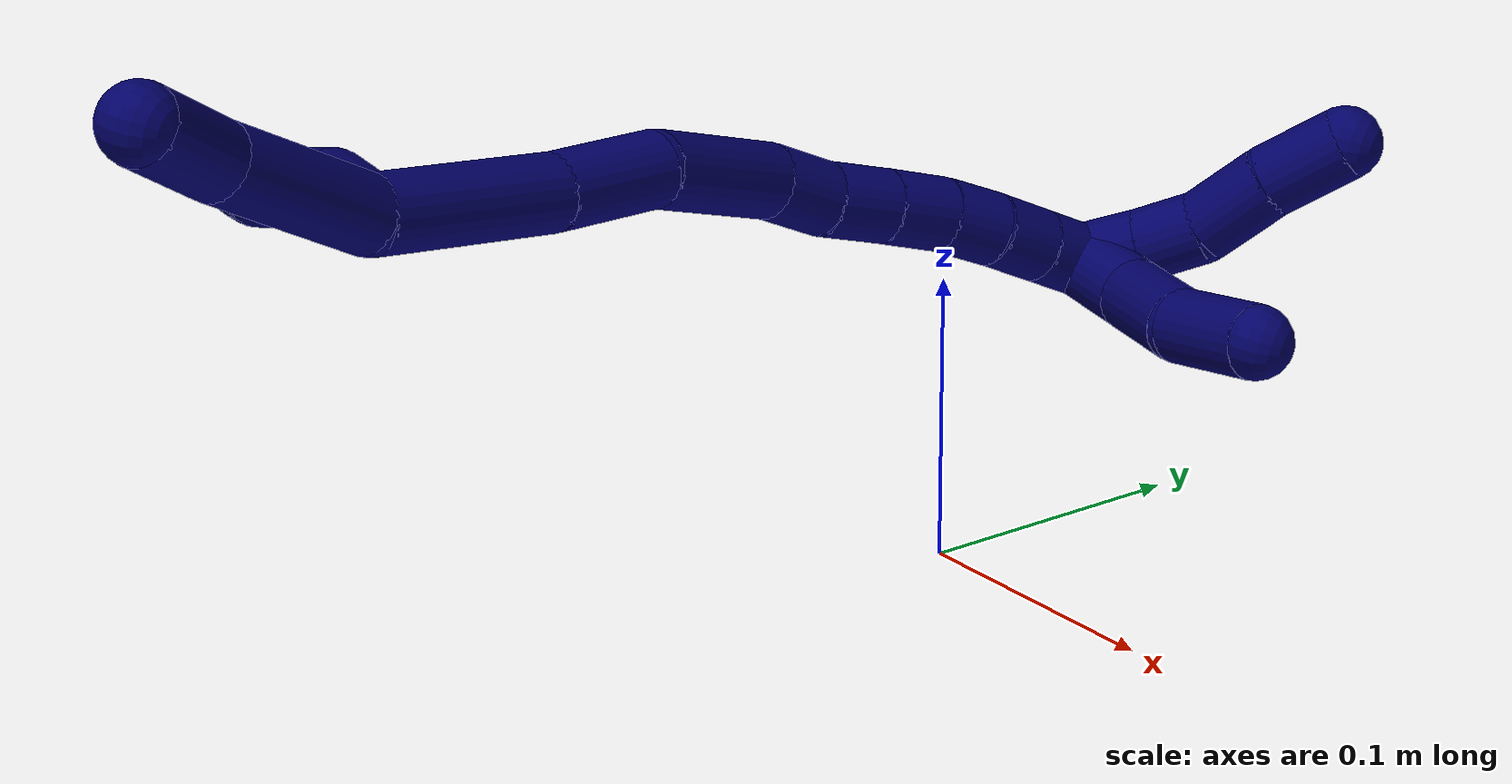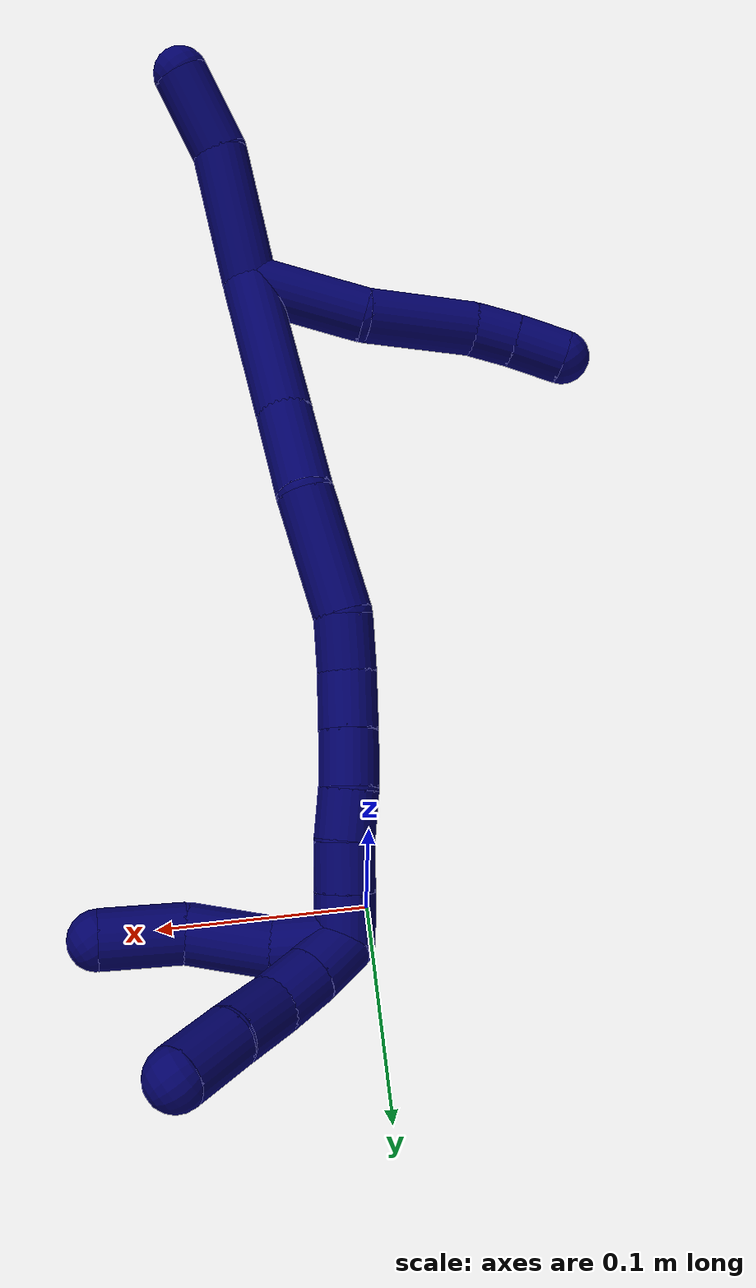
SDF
<sdf version="1.7">
 <world name="default">
  <model name="7">
   <static>0</static>
   <link name="7">
    <collision name="collision-cylinder-e_1_2_8">
     <pose>-0.004799 0.020585 0.016849 -0.884876 -0.178467 0.084725</pose>
     <geometry><cylinder><radius>0.0125</radius><length>0.054062</length></cylinder></geometry>
     <surface>
      <friction><ode><mu>1.16</mu><mu2>1.16</mu2><slip1>0</slip1><slip2>0</slip2></ode></friction>
      <contact><ode><kp>1e+06</kp><kd>1</kd><max_vel>0</max_vel><min_depth>0.001</min_depth></ode></contact>
     </surface>
    </collision>
    <visual name="visual-cylinder-e_1_2_8">
     <pose>-0.004799 0.020585 0.016849 -0.884876 -0.178467 0.084725</pose>
     <geometry><cylinder><radius>0.0125</radius><length>0.054062</length></cylinder></geometry>
     <material><ambient>0.003922 0 0.403922 1</ambient></material>
    </visual>
    <collision name="collision-cylinder-e_2_8_9">
     <pose>-0.018161 0.05511 0.053587 -0.611324 -0.338981 0.107897</pose>
     <geometry><cylinder><radius>0.0125</radius><length>0.051505</length></cylinder></geometry>
     <surface>
      <friction><ode><mu>1.16</mu><mu2>1.16</mu2><slip1>0</slip1><slip2>0</slip2></ode></friction>
      <contact><ode><kp>1e+06</kp><kd>1</kd><max_vel>0</max_vel><min_depth>0.001</min_depth></ode></contact>
     </surface>
    </collision>
    <visual name="visual-cylinder-e_2_8_9">
     <pose>-0.018161 0.05511 0.053587 -0.611324 -0.338981 0.107897</pose>
     <geometry><cylinder><radius>0.0125</radius><length>0.051505</length></cylinder></geometry>
     <material><ambient>0.003922 0 0.403922 1</ambient></material>
    </visual>
    <collision name="collision-cylinder-e_3_9_10">
     <pose>-0.0289 0.076556 0.07999 -0.855892 -0.215584 0.098638</pose>
     <geometry><cylinder><radius>0.0125</radius><length>0.020349</length></cylinder></geometry>
     <surface>
      <friction><ode><mu>1.16</mu><mu2>1.16</mu2><slip1>0</slip1><slip2>0</slip2></ode></friction>
      <contact><ode><kp>1e+06</kp><kd>1</kd><max_vel>0</max_vel><min_depth>0.001</min_depth></ode></contact>
     </surface>
    </collision>
    <visual name="visual-cylinder-e_3_9_10">
     <pose>-0.0289 0.076556 0.07999 -0.855892 -0.215584 0.098638</pose>
     <geometry><cylinder><radius>0.0125</radius><length>0.020349</length></cylinder></geometry>
     <material><ambient>0.003922 0 0.403922 1</ambient></material>
    </visual>
    <collision name="collision-cylinder-e_4_10_6">
     <pose>-0.033444 0.093544 0.093541 -0.932535 -0.197884 0.099834</pose>
     <geometry><cylinder><radius>0.0125</radius><length>0.024084</length></cylinder></geometry>
     <surface>
      <friction><ode><mu>1.16</mu><mu2>1.16</mu2><slip1>0</slip1><slip2>0</slip2></ode></friction>
      <contact><ode><kp>1e+06</kp><kd>1</kd><max_vel>0</max_vel><min_depth>0.001</min_depth></ode></contact>
     </surface>
    </collision>
    <visual name="visual-cylinder-e_4_10_6">
     <pose>-0.033444 0.093544 0.093541 -0.932535 -0.197884 0.099834</pose>
     <geometry><cylinder><radius>0.0125</radius><length>0.024084</length></cylinder></geometry>
     <material><ambient>0.003922 0 0.403922 1</ambient></material>
    </visual>
    <collision name="collision-cylinder-e_1_2_11">
     <pose>0.009784 -0.026543 0.011671 1.15655 0.325444 0.213498</pose>
     <geometry><cylinder><radius>0.0125</radius><length>0.061204</length></cylinder></geometry>
     <surface>
      <friction><ode><mu>1.16</mu><mu2>1.16</mu2><slip1>0</slip1><slip2>0</slip2></ode></friction>
      <contact><ode><kp>1e+06</kp><kd>1</kd><max_vel>0</max_vel><min_depth>0.001</min_depth></ode></contact>
     </surface>
    </collision>
    <visual name="visual-cylinder-e_1_2_11">
     <pose>0.009784 -0.026543 0.011671 1.15655 0.325444 0.213498</pose>
     <geometry><cylinder><radius>0.0125</radius><length>0.061204</length></cylinder></geometry>
     <material><ambient>0.003922 0 0.403922 1</ambient></material>
    </visual>
    <collision name="collision-cylinder-e_2_11_5">
     <pose>0.027202 -0.070712 0.026055 1.41806 0.40443 0.348183</pose>
     <geometry><cylinder><radius>0.0125</radius><length>0.038796</length></cylinder></geometry>
     <surface>
      <friction><ode><mu>1.16</mu><mu2>1.16</mu2><slip1>0</slip1><slip2>0</slip2></ode></friction>
      <contact><ode><kp>1e+06</kp><kd>1</kd><max_vel>0</max_vel><min_depth>0.001</min_depth></ode></contact>
     </surface>
    </collision>
    <visual name="visual-cylinder-e_2_11_5">
     <pose>0.027202 -0.070712 0.026055 1.41806 0.40443 0.348183</pose>
     <geometry><cylinder><radius>0.0125</radius><length>0.038796</length></cylinder></geometry>
     <material><ambient>0.003922 0 0.403922 1</ambient></material>
    </visual>
    <collision name="collision-cylinder-e_1_2_12">
     <pose>0.001293 0.032593 -0.013384 -1.96045 0.036673 -0.054697</pose>
     <geometry><cylinder><radius>0.0125</radius><length>0.070515</length></cylinder></geometry>
     <surface>
      <friction><ode><mu>1.16</mu><mu2>1.16</mu2><slip1>0</slip1><slip2>0</slip2></ode></friction>
      <contact><ode><kp>1e+06</kp><kd>1</kd><max_vel>0</max_vel><min_depth>0.001</min_depth></ode></contact>
     </surface>
    </collision>
    <visual name="visual-cylinder-e_1_2_12">
     <pose>0.001293 0.032593 -0.013384 -1.96045 0.036673 -0.054697</pose>
     <geometry><cylinder><radius>0.0125</radius><length>0.070515</length></cylinder></geometry>
     <material><ambient>0.003922 0 0.403922 1</ambient></material>
    </visual>
    <collision name="collision-cylinder-e_2_12_13">
     <pose>0.005229 0.084148 -0.034668 -1.96551 0.128008 -0.191669</pose>
     <geometry><cylinder><radius>0.0125</radius><length>0.041423</length></cylinder></geometry>
     <surface>
      <friction><ode><mu>1.16</mu><mu2>1.16</mu2><slip1>0</slip1><slip2>0</slip2></ode></friction>
      <contact><ode><kp>1e+06</kp><kd>1</kd><max_vel>0</max_vel><min_depth>0.001</min_depth></ode></contact>
     </surface>
    </collision>
    <visual name="visual-cylinder-e_2_12_13">
     <pose>0.005229 0.084148 -0.034668 -1.96551 0.128008 -0.191669</pose>
     <geometry><cylinder><radius>0.0125</radius><length>0.041423</length></cylinder></geometry>
     <material><ambient>0.003922 0 0.403922 1</ambient></material>
    </visual>
    <collision name="collision-cylinder-e_3_13_14">
     <pose>0.003838 0.128614 -0.05167 -1.91363 -0.147922 0.209474</pose>
     <geometry><cylinder><radius>0.0125</radius><length>0.054756</length></cylinder></geometry>
     <surface>
      <friction><ode><mu>1.16</mu><mu2>1.16</mu2><slip1>0</slip1><slip2>0</slip2></ode></friction>
      <contact><ode><kp>1e+06</kp><kd>1</kd><max_vel>0</max_vel><min_depth>0.001</min_depth></ode></contact>
     </surface>
    </collision>
    <visual name="visual-cylinder-e_3_13_14">
     <pose>0.003838 0.128614 -0.05167 -1.91363 -0.147922 0.209474</pose>
     <geometry><cylinder><radius>0.0125</radius><length>0.054756</length></cylinder></geometry>
     <material><ambient>0.003922 0 0.403922 1</ambient></material>
    </visual>
    <collision name="collision-cylinder-e_4_14_15">
     <pose>-0.003194 0.163877 -0.067201 -2.15324 -0.251049 0.460139</pose>
     <geometry><cylinder><radius>0.0125</radius><length>0.02413</length></cylinder></geometry>
     <surface>
      <friction><ode><mu>1.16</mu><mu2>1.16</mu2><slip1>0</slip1><slip2>0</slip2></ode></friction>
      <contact><ode><kp>1e+06</kp><kd>1</kd><max_vel>0</max_vel><min_depth>0.001</min_depth></ode></contact>
     </surface>
    </collision>
    <visual name="visual-cylinder-e_4_14_15">
     <pose>-0.003194 0.163877 -0.067201 -2.15324 -0.251049 0.460139</pose>
     <geometry><cylinder><radius>0.0125</radius><length>0.02413</length></cylinder></geometry>
     <material><ambient>0.003922 0 0.403922 1</ambient></material>
    </visual>
    <collision name="collision-cylinder-e_5_15_16">
     <pose>-0.007271 0.183586 -0.080603 -2.18219 -0.088668 0.170139</pose>
     <geometry><cylinder><radius>0.0125</radius><length>0.024395</length></cylinder></geometry>
     <surface>
      <friction><ode><mu>1.16</mu><mu2>1.16</mu2><slip1>0</slip1><slip2>0</slip2></ode></friction>
      <contact><ode><kp>1e+06</kp><kd>1</kd><max_vel>0</max_vel><min_depth>0.001</min_depth></ode></contact>
     </surface>
    </collision>
    <visual name="visual-cylinder-e_5_15_16">
     <pose>-0.007271 0.183586 -0.080603 -2.18219 -0.088668 0.170139</pose>
     <geometry><cylinder><radius>0.0125</radius><length>0.024395</length></cylinder></geometry>
     <material><ambient>0.003922 0 0.403922 1</ambient></material>
    </visual>
    <collision name="collision-cylinder-e_6_16_17">
     <pose>-0.009544 0.202931 -0.094525 -2.20749 -0.101689 0.201151</pose>
     <geometry><cylinder><radius>0.0125</radius><length>0.023493</length></cylinder></geometry>
     <surface>
      <friction><ode><mu>1.16</mu><mu2>1.16</mu2><slip1>0</slip1><slip2>0</slip2></ode></friction>
      <contact><ode><kp>1e+06</kp><kd>1</kd><max_vel>0</max_vel><min_depth>0.001</min_depth></ode></contact>
     </surface>
    </collision>
    <visual name="visual-cylinder-e_6_16_17">
     <pose>-0.009544 0.202931 -0.094525 -2.20749 -0.101689 0.201151</pose>
     <geometry><cylinder><radius>0.0125</radius><length>0.023493</length></cylinder></geometry>
     <material><ambient>0.003922 0 0.403922 1</ambient></material>
    </visual>
    <collision name="collision-cylinder-e_7_17_18">
     <pose>-0.012758 0.219836 -0.108256 -2.30542 -0.197187 0.438135</pose>
     <geometry><cylinder><radius>0.0125</radius><length>0.020638</length></cylinder></geometry>
     <surface>
      <friction><ode><mu>1.16</mu><mu2>1.16</mu2><slip1>0</slip1><slip2>0</slip2></ode></friction>
      <contact><ode><kp>1e+06</kp><kd>1</kd><max_vel>0</max_vel><min_depth>0.001</min_depth></ode></contact>
     </surface>
    </collision>
    <visual name="visual-cylinder-e_7_17_18">
     <pose>-0.012758 0.219836 -0.108256 -2.30542 -0.197187 0.438135</pose>
     <geometry><cylinder><radius>0.0125</radius><length>0.020638</length></cylinder></geometry>
     <material><ambient>0.003922 0 0.403922 1</ambient></material>
    </visual>
    <collision name="collision-cylinder-e_8_18_19">
     <pose>-0.017402 0.235335 -0.120999 -2.21172 -0.257286 0.504768</pose>
     <geometry><cylinder><radius>0.0125</radius><length>0.020614</length></cylinder></geometry>
     <surface>
      <friction><ode><mu>1.16</mu><mu2>1.16</mu2><slip1>0</slip1><slip2>0</slip2></ode></friction>
      <contact><ode><kp>1e+06</kp><kd>1</kd><max_vel>0</max_vel><min_depth>0.001</min_depth></ode></contact>
     </surface>
    </collision>
    <visual name="visual-cylinder-e_8_18_19">
     <pose>-0.017402 0.235335 -0.120999 -2.21172 -0.257286 0.504768</pose>
     <geometry><cylinder><radius>0.0125</radius><length>0.020614</length></cylinder></geometry>
     <material><ambient>0.003922 0 0.403922 1</ambient></material>
    </visual>
    <collision name="collision-cylinder-e_9_19_1">
     <pose>-0.022572 0.250991 -0.132882 -2.22864 -0.257125 0.514828</pose>
     <geometry><cylinder><radius>0.0125</radius><length>0.020035</length></cylinder></geometry>
     <surface>
      <friction><ode><mu>1.16</mu><mu2>1.16</mu2><slip1>0</slip1><slip2>0</slip2></ode></friction>
      <contact><ode><kp>1e+06</kp><kd>1</kd><max_vel>0</max_vel><min_depth>0.001</min_depth></ode></contact>
     </surface>
    </collision>
    <visual name="visual-cylinder-e_9_19_1">
     <pose>-0.022572 0.250991 -0.132882 -2.22864 -0.257125 0.514828</pose>
     <geometry><cylinder><radius>0.0125</radius><length>0.020035</length></cylinder></geometry>
     <material><ambient>0.003922 0 0.403922 1</ambient></material>
    </visual>
    <collision name="collision-cylinder-e_1_1_20">
     <pose>-0.025741 0.250724 -0.150991 2.56447 -0.04271 -0.143653</pose>
     <geometry><cylinder><radius>0.0125</radius><length>0.029107</length></cylinder></geometry>
     <surface>
      <friction><ode><mu>1.16</mu><mu2>1.16</mu2><slip1>0</slip1><slip2>0</slip2></ode></friction>
      <contact><ode><kp>1e+06</kp><kd>1</kd><max_vel>0</max_vel><min_depth>0.001</min_depth></ode></contact>
     </surface>
    </collision>
    <visual name="visual-cylinder-e_1_1_20">
     <pose>-0.025741 0.250724 -0.150991 2.56447 -0.04271 -0.143653</pose>
     <geometry><cylinder><radius>0.0125</radius><length>0.029107</length></cylinder></geometry>
     <material><ambient>0.003922 0 0.403922 1</ambient></material>
    </visual>
    <collision name="collision-cylinder-e_2_20_21">
     <pose>-0.02519 0.230172 -0.175606 2.34865 0.066111 0.15765</pose>
     <geometry><cylinder><radius>0.0125</radius><length>0.035503</length></cylinder></geometry>
     <surface>
      <friction><ode><mu>1.16</mu><mu2>1.16</mu2><slip1>0</slip1><slip2>0</slip2></ode></friction>
      <contact><ode><kp>1e+06</kp><kd>1</kd><max_vel>0</max_vel><min_depth>0.001</min_depth></ode></contact>
     </surface>
    </collision>
    <visual name="visual-cylinder-e_2_20_21">
     <pose>-0.02519 0.230172 -0.175606 2.34865 0.066111 0.15765</pose>
     <geometry><cylinder><radius>0.0125</radius><length>0.035503</length></cylinder></geometry>
     <material><ambient>0.003922 0 0.403922 1</ambient></material>
    </visual>
    <collision name="collision-cylinder-e_3_21_4">
     <pose>-0.020203 0.208687 -0.202867 2.60277 0.217213 0.752168</pose>
     <geometry><cylinder><radius>0.0125</radius><length>0.03539</length></cylinder></geometry>
     <surface>
      <friction><ode><mu>1.16</mu><mu2>1.16</mu2><slip1>0</slip1><slip2>0</slip2></ode></friction>
      <contact><ode><kp>1e+06</kp><kd>1</kd><max_vel>0</max_vel><min_depth>0.001</min_depth></ode></contact>
     </surface>
    </collision>
    <visual name="visual-cylinder-e_3_21_4">
     <pose>-0.020203 0.208687 -0.202867 2.60277 0.217213 0.752168</pose>
     <geometry><cylinder><radius>0.0125</radius><length>0.03539</length></cylinder></geometry>
     <material><ambient>0.003922 0 0.403922 1</ambient></material>
    </visual>
    <collision name="collision-cylinder-e_1_1_22">
     <pose>-0.019878 0.260428 -0.148105 -2.95349 0.505731 -2.44153</pose>
     <geometry><cylinder><radius>0.0125</radius><length>0.021641</length></cylinder></geometry>
     <surface>
      <friction><ode><mu>1.16</mu><mu2>1.16</mu2><slip1>0</slip1><slip2>0</slip2></ode></friction>
      <contact><ode><kp>1e+06</kp><kd>1</kd><max_vel>0</max_vel><min_depth>0.001</min_depth></ode></contact>
     </surface>
    </collision>
    <visual name="visual-cylinder-e_1_1_22">
     <pose>-0.019878 0.260428 -0.148105 -2.95349 0.505731 -2.44153</pose>
     <geometry><cylinder><radius>0.0125</radius><length>0.021641</length></cylinder></geometry>
     <material><ambient>0.003922 0 0.403922 1</ambient></material>
    </visual>
    <collision name="collision-cylinder-e_2_22_23">
     <pose>-0.008839 0.26326 -0.166407 -3.02409 0.568926 -2.74458</pose>
     <geometry><cylinder><radius>0.0125</radius><length>0.021519</length></cylinder></geometry>
     <surface>
      <friction><ode><mu>1.16</mu><mu2>1.16</mu2><slip1>0</slip1><slip2>0</slip2></ode></friction>
      <contact><ode><kp>1e+06</kp><kd>1</kd><max_vel>0</max_vel><min_depth>0.001</min_depth></ode></contact>
     </surface>
    </collision>
    <visual name="visual-cylinder-e_2_22_23">
     <pose>-0.008839 0.26326 -0.166407 -3.02409 0.568926 -2.74458</pose>
     <geometry><cylinder><radius>0.0125</radius><length>0.021519</length></cylinder></geometry>
     <material><ambient>0.003922 0 0.403922 1</ambient></material>
    </visual>
    <collision name="collision-cylinder-e_3_23_24">
     <pose>0.007549 0.265403 -0.184456 -3.0228 0.860388 -2.88384</pose>
     <geometry><cylinder><radius>0.0125</radius><length>0.027943</length></cylinder></geometry>
     <surface>
      <friction><ode><mu>1.16</mu><mu2>1.16</mu2><slip1>0</slip1><slip2>0</slip2></ode></friction>
      <contact><ode><kp>1e+06</kp><kd>1</kd><max_vel>0</max_vel><min_depth>0.001</min_depth></ode></contact>
     </surface>
    </collision>
    <visual name="visual-cylinder-e_3_23_24">
     <pose>0.007549 0.265403 -0.184456 -3.0228 0.860388 -2.88384</pose>
     <geometry><cylinder><radius>0.0125</radius><length>0.027943</length></cylinder></geometry>
     <material><ambient>0.003922 0 0.403922 1</ambient></material>
    </visual>
    <collision name="collision-cylinder-e_4_24_3">
     <pose>0.027833 0.267749 -0.204143 -3.02312 0.735312 -2.83604</pose>
     <geometry><cylinder><radius>0.0125</radius><length>0.028896</length></cylinder></geometry>
     <surface>
      <friction><ode><mu>1.16</mu><mu2>1.16</mu2><slip1>0</slip1><slip2>0</slip2></ode></friction>
      <contact><ode><kp>1e+06</kp><kd>1</kd><max_vel>0</max_vel><min_depth>0.001</min_depth></ode></contact>
     </surface>
    </collision>
    <visual name="visual-cylinder-e_4_24_3">
     <pose>0.027833 0.267749 -0.204143 -3.02312 0.735312 -2.83604</pose>
     <geometry><cylinder><radius>0.0125</radius><length>0.028896</length></cylinder></geometry>
     <material><ambient>0.003922 0 0.403922 1</ambient></material>
    </visual>
    <collision name="collision-sphere-3">
     <pose>0.037525 0.269016 -0.214783 0 -0 0</pose>
     <geometry><sphere><radius>0.0125</radius></sphere></geometry>
     <surface>
      <friction><ode><mu>1.16</mu><mu2>1.16</mu2><slip1>0</slip1><slip2>0</slip2></ode></friction>
      <contact><ode><kp>1e+06</kp><kd>1</kd><max_vel>0</max_vel><min_depth>0.001</min_depth></ode></contact>
     </surface>
    </collision>
    <visual name="visual-sphere-3">
     <pose>0.037525 0.269016 -0.214783 0 -0 0</pose>
     <geometry><sphere><radius>0.0125</radius></sphere></geometry>
     <material><ambient>0.003922 0 0.403922 1</ambient></material>
    </visual>
    <collision name="collision-sphere-24">
     <pose>0.018141 0.266483 -0.193503 0 -0 0</pose>
     <geometry><sphere><radius>0.0125</radius></sphere></geometry>
     <surface>
      <friction><ode><mu>1.16</mu><mu2>1.16</mu2><slip1>0</slip1><slip2>0</slip2></ode></friction>
      <contact><ode><kp>1e+06</kp><kd>1</kd><max_vel>0</max_vel><min_depth>0.001</min_depth></ode></contact>
     </surface>
    </collision>
    <visual name="visual-sphere-24">
     <pose>0.018141 0.266483 -0.193503 0 -0 0</pose>
     <geometry><sphere><radius>0.0125</radius></sphere></geometry>
     <material><ambient>0.003922 0 0.403922 1</ambient></material>
    </visual>
    <collision name="collision-sphere-23">
     <pose>-0.003042 0.264323 -0.175409 0 -0 0</pose>
     <geometry><sphere><radius>0.0125</radius></sphere></geometry>
     <surface>
      <friction><ode><mu>1.16</mu><mu2>1.16</mu2><slip1>0</slip1><slip2>0</slip2></ode></friction>
      <contact><ode><kp>1e+06</kp><kd>1</kd><max_vel>0</max_vel><min_depth>0.001</min_depth></ode></contact>
     </surface>
    </collision>
    <visual name="visual-sphere-23">
     <pose>-0.003042 0.264323 -0.175409 0 -0 0</pose>
     <geometry><sphere><radius>0.0125</radius></sphere></geometry>
     <material><ambient>0.003922 0 0.403922 1</ambient></material>
    </visual>
    <collision name="collision-sphere-22">
     <pose>-0.014635 0.262198 -0.157404 0 -0 0</pose>
     <geometry><sphere><radius>0.0125</radius></sphere></geometry>
     <surface>
      <friction><ode><mu>1.16</mu><mu2>1.16</mu2><slip1>0</slip1><slip2>0</slip2></ode></friction>
      <contact><ode><kp>1e+06</kp><kd>1</kd><max_vel>0</max_vel><min_depth>0.001</min_depth></ode></contact>
     </surface>
    </collision>
    <visual name="visual-sphere-22">
     <pose>-0.014635 0.262198 -0.157404 0 -0 0</pose>
     <geometry><sphere><radius>0.0125</radius></sphere></geometry>
     <material><ambient>0.003922 0 0.403922 1</ambient></material>
    </visual>
    <collision name="collision-sphere-4">
     <pose>-0.01639 0.19982 -0.217698 0 -0 0</pose>
     <geometry><sphere><radius>0.0125</radius></sphere></geometry>
     <surface>
      <friction><ode><mu>1.16</mu><mu2>1.16</mu2><slip1>0</slip1><slip2>0</slip2></ode></friction>
      <contact><ode><kp>1e+06</kp><kd>1</kd><max_vel>0</max_vel><min_depth>0.001</min_depth></ode></contact>
     </surface>
    </collision>
    <visual name="visual-sphere-4">
     <pose>-0.01639 0.19982 -0.217698 0 -0 0</pose>
     <geometry><sphere><radius>0.0125</radius></sphere></geometry>
     <material><ambient>0.003922 0 0.403922 1</ambient></material>
    </visual>
    <collision name="collision-sphere-21">
     <pose>-0.024017 0.217553 -0.188036 0 -0 0</pose>
     <geometry><sphere><radius>0.0125</radius></sphere></geometry>
     <surface>
      <friction><ode><mu>1.16</mu><mu2>1.16</mu2><slip1>0</slip1><slip2>0</slip2></ode></friction>
      <contact><ode><kp>1e+06</kp><kd>1</kd><max_vel>0</max_vel><min_depth>0.001</min_depth></ode></contact>
     </surface>
    </collision>
    <visual name="visual-sphere-21">
     <pose>-0.024017 0.217553 -0.188036 0 -0 0</pose>
     <geometry><sphere><radius>0.0125</radius></sphere></geometry>
     <material><ambient>0.003922 0 0.403922 1</ambient></material>
    </visual>
    <collision name="collision-sphere-20">
     <pose>-0.026362 0.242791 -0.163176 0 -0 0</pose>
     <geometry><sphere><radius>0.0125</radius></sphere></geometry>
     <surface>
      <friction><ode><mu>1.16</mu><mu2>1.16</mu2><slip1>0</slip1><slip2>0</slip2></ode></friction>
      <contact><ode><kp>1e+06</kp><kd>1</kd><max_vel>0</max_vel><min_depth>0.001</min_depth></ode></contact>
     </surface>
    </collision>
    <visual name="visual-sphere-20">
     <pose>-0.026362 0.242791 -0.163176 0 -0 0</pose>
     <geometry><sphere><radius>0.0125</radius></sphere></geometry>
     <material><ambient>0.003922 0 0.403922 1</ambient></material>
    </visual>
    <collision name="collision-sphere-11">
     <pose>0.019569 -0.053087 0.023342 0 -0 0</pose>
     <geometry><sphere><radius>0.0125</radius></sphere></geometry>
     <surface>
      <friction><ode><mu>1.16</mu><mu2>1.16</mu2><slip1>0</slip1><slip2>0</slip2></ode></friction>
      <contact><ode><kp>1e+06</kp><kd>1</kd><max_vel>0</max_vel><min_depth>0.001</min_depth></ode></contact>
     </surface>
    </collision>
    <visual name="visual-sphere-11">
     <pose>0.019569 -0.053087 0.023342 0 -0 0</pose>
     <geometry><sphere><radius>0.0125</radius></sphere></geometry>
     <material><ambient>0.003922 0 0.403922 1</ambient></material>
    </visual>
    <collision name="collision-sphere-6">
     <pose>-0.035812 0.103026 0.100575 0 -0 0</pose>
     <geometry><sphere><radius>0.0125</radius></sphere></geometry>
     <surface>
      <friction><ode><mu>1.16</mu><mu2>1.16</mu2><slip1>0</slip1><slip2>0</slip2></ode></friction>
      <contact><ode><kp>1e+06</kp><kd>1</kd><max_vel>0</max_vel><min_depth>0.001</min_depth></ode></contact>
     </surface>
    </collision>
    <visual name="visual-sphere-6">
     <pose>-0.035812 0.103026 0.100575 0 -0 0</pose>
     <geometry><sphere><radius>0.0125</radius></sphere></geometry>
     <material><ambient>0.003922 0 0.403922 1</ambient></material>
    </visual>
    <collision name="collision-sphere-10">
     <pose>-0.031077 0.084061 0.086506 0 -0 0</pose>
     <geometry><sphere><radius>0.0125</radius></sphere></geometry>
     <surface>
      <friction><ode><mu>1.16</mu><mu2>1.16</mu2><slip1>0</slip1><slip2>0</slip2></ode></friction>
      <contact><ode><kp>1e+06</kp><kd>1</kd><max_vel>0</max_vel><min_depth>0.001</min_depth></ode></contact>
     </surface>
    </collision>
    <visual name="visual-sphere-10">
     <pose>-0.031077 0.084061 0.086506 0 -0 0</pose>
     <geometry><sphere><radius>0.0125</radius></sphere></geometry>
     <material><ambient>0.003922 0 0.403922 1</ambient></material>
    </visual>
    <collision name="collision-sphere-9">
     <pose>-0.026724 0.06905 0.073475 0 -0 0</pose>
     <geometry><sphere><radius>0.0125</radius></sphere></geometry>
     <surface>
      <friction><ode><mu>1.16</mu><mu2>1.16</mu2><slip1>0</slip1><slip2>0</slip2></ode></friction>
      <contact><ode><kp>1e+06</kp><kd>1</kd><max_vel>0</max_vel><min_depth>0.001</min_depth></ode></contact>
     </surface>
    </collision>
    <visual name="visual-sphere-9">
     <pose>-0.026724 0.06905 0.073475 0 -0 0</pose>
     <geometry><sphere><radius>0.0125</radius></sphere></geometry>
     <material><ambient>0.003922 0 0.403922 1</ambient></material>
    </visual>
    <collision name="collision-sphere-2">
     <geometry><sphere><radius>0.0125</radius></sphere></geometry>
     <surface>
      <friction><ode><mu>1.16</mu><mu2>1.16</mu2><slip1>0</slip1><slip2>0</slip2></ode></friction>
      <contact><ode><kp>1e+06</kp><kd>1</kd><max_vel>0</max_vel><min_depth>0.001</min_depth></ode></contact>
     </surface>
    </collision>
    <visual name="visual-sphere-2">
     <geometry><sphere><radius>0.0125</radius></sphere></geometry>
     <material><ambient>0.003922 0 0.403922 1</ambient></material>
    </visual>
    <collision name="collision-sphere-19">
     <pose>-0.020025 0.243325 -0.126959 0 -0 0</pose>
     <geometry><sphere><radius>0.0125</radius></sphere></geometry>
     <surface>
      <friction><ode><mu>1.16</mu><mu2>1.16</mu2><slip1>0</slip1><slip2>0</slip2></ode></friction>
      <contact><ode><kp>1e+06</kp><kd>1</kd><max_vel>0</max_vel><min_depth>0.001</min_depth></ode></contact>
     </surface>
    </collision>
    <visual name="visual-sphere-19">
     <pose>-0.020025 0.243325 -0.126959 0 -0 0</pose>
     <geometry><sphere><radius>0.0125</radius></sphere></geometry>
     <material><ambient>0.003922 0 0.403922 1</ambient></material>
    </visual>
    <collision name="collision-sphere-8">
     <pose>-0.009597 0.041171 0.033698 0 -0 0</pose>
     <geometry><sphere><radius>0.0125</radius></sphere></geometry>
     <surface>
      <friction><ode><mu>1.16</mu><mu2>1.16</mu2><slip1>0</slip1><slip2>0</slip2></ode></friction>
      <contact><ode><kp>1e+06</kp><kd>1</kd><max_vel>0</max_vel><min_depth>0.001</min_depth></ode></contact>
     </surface>
    </collision>
    <visual name="visual-sphere-8">
     <pose>-0.009597 0.041171 0.033698 0 -0 0</pose>
     <geometry><sphere><radius>0.0125</radius></sphere></geometry>
     <material><ambient>0.003922 0 0.403922 1</ambient></material>
    </visual>
    <collision name="collision-sphere-5">
     <pose>0.034835 -0.088337 0.028768 0 -0 0</pose>
     <geometry><sphere><radius>0.0125</radius></sphere></geometry>
     <surface>
      <friction><ode><mu>1.16</mu><mu2>1.16</mu2><slip1>0</slip1><slip2>0</slip2></ode></friction>
      <contact><ode><kp>1e+06</kp><kd>1</kd><max_vel>0</max_vel><min_depth>0.001</min_depth></ode></contact>
     </surface>
    </collision>
    <visual name="visual-sphere-5">
     <pose>0.034835 -0.088337 0.028768 0 -0 0</pose>
     <geometry><sphere><radius>0.0125</radius></sphere></geometry>
     <material><ambient>0.003922 0 0.403922 1</ambient></material>
    </visual>
    <collision name="collision-sphere-12">
     <pose>0.002585 0.065186 -0.026768 0 -0 0</pose>
     <geometry><sphere><radius>0.0125</radius></sphere></geometry>
     <surface>
      <friction><ode><mu>1.16</mu><mu2>1.16</mu2><slip1>0</slip1><slip2>0</slip2></ode></friction>
      <contact><ode><kp>1e+06</kp><kd>1</kd><max_vel>0</max_vel><min_depth>0.001</min_depth></ode></contact>
     </surface>
    </collision>
    <visual name="visual-sphere-12">
     <pose>0.002585 0.065186 -0.026768 0 -0 0</pose>
     <geometry><sphere><radius>0.0125</radius></sphere></geometry>
     <material><ambient>0.003922 0 0.403922 1</ambient></material>
    </visual>
    <collision name="collision-sphere-13">
     <pose>0.007873 0.103111 -0.042567 0 -0 0</pose>
     <geometry><sphere><radius>0.0125</radius></sphere></geometry>
     <surface>
      <friction><ode><mu>1.16</mu><mu2>1.16</mu2><slip1>0</slip1><slip2>0</slip2></ode></friction>
      <contact><ode><kp>1e+06</kp><kd>1</kd><max_vel>0</max_vel><min_depth>0.001</min_depth></ode></contact>
     </surface>
    </collision>
    <visual name="visual-sphere-13">
     <pose>0.007873 0.103111 -0.042567 0 -0 0</pose>
     <geometry><sphere><radius>0.0125</radius></sphere></geometry>
     <material><ambient>0.003922 0 0.403922 1</ambient></material>
    </visual>
    <collision name="collision-sphere-14">
     <pose>-0.000197 0.154117 -0.060772 0 -0 0</pose>
     <geometry><sphere><radius>0.0125</radius></sphere></geometry>
     <surface>
      <friction><ode><mu>1.16</mu><mu2>1.16</mu2><slip1>0</slip1><slip2>0</slip2></ode></friction>
      <contact><ode><kp>1e+06</kp><kd>1</kd><max_vel>0</max_vel><min_depth>0.001</min_depth></ode></contact>
     </surface>
    </collision>
    <visual name="visual-sphere-14">
     <pose>-0.000197 0.154117 -0.060772 0 -0 0</pose>
     <geometry><sphere><radius>0.0125</radius></sphere></geometry>
     <material><ambient>0.003922 0 0.403922 1</ambient></material>
    </visual>
    <collision name="collision-sphere-15">
     <pose>-0.006191 0.173637 -0.073629 0 -0 0</pose>
     <geometry><sphere><radius>0.0125</radius></sphere></geometry>
     <surface>
      <friction><ode><mu>1.16</mu><mu2>1.16</mu2><slip1>0</slip1><slip2>0</slip2></ode></friction>
      <contact><ode><kp>1e+06</kp><kd>1</kd><max_vel>0</max_vel><min_depth>0.001</min_depth></ode></contact>
     </surface>
    </collision>
    <visual name="visual-sphere-15">
     <pose>-0.006191 0.173637 -0.073629 0 -0 0</pose>
     <geometry><sphere><radius>0.0125</radius></sphere></geometry>
     <material><ambient>0.003922 0 0.403922 1</ambient></material>
    </visual>
    <collision name="collision-sphere-16">
     <pose>-0.008351 0.193534 -0.087577 0 -0 0</pose>
     <geometry><sphere><radius>0.0125</radius></sphere></geometry>
     <surface>
      <friction><ode><mu>1.16</mu><mu2>1.16</mu2><slip1>0</slip1><slip2>0</slip2></ode></friction>
      <contact><ode><kp>1e+06</kp><kd>1</kd><max_vel>0</max_vel><min_depth>0.001</min_depth></ode></contact>
     </surface>
    </collision>
    <visual name="visual-sphere-16">
     <pose>-0.008351 0.193534 -0.087577 0 -0 0</pose>
     <geometry><sphere><radius>0.0125</radius></sphere></geometry>
     <material><ambient>0.003922 0 0.403922 1</ambient></material>
    </visual>
    <collision name="collision-sphere-17">
     <pose>-0.010736 0.212327 -0.101473 0 -0 0</pose>
     <geometry><sphere><radius>0.0125</radius></sphere></geometry>
     <surface>
      <friction><ode><mu>1.16</mu><mu2>1.16</mu2><slip1>0</slip1><slip2>0</slip2></ode></friction>
      <contact><ode><kp>1e+06</kp><kd>1</kd><max_vel>0</max_vel><min_depth>0.001</min_depth></ode></contact>
     </surface>
    </collision>
    <visual name="visual-sphere-17">
     <pose>-0.010736 0.212327 -0.101473 0 -0 0</pose>
     <geometry><sphere><radius>0.0125</radius></sphere></geometry>
     <material><ambient>0.003922 0 0.403922 1</ambient></material>
    </visual>
    <collision name="collision-sphere-18">
     <pose>-0.014779 0.227346 -0.115039 0 -0 0</pose>
     <geometry><sphere><radius>0.0125</radius></sphere></geometry>
     <surface>
      <friction><ode><mu>1.16</mu><mu2>1.16</mu2><slip1>0</slip1><slip2>0</slip2></ode></friction>
      <contact><ode><kp>1e+06</kp><kd>1</kd><max_vel>0</max_vel><min_depth>0.001</min_depth></ode></contact>
     </surface>
    </collision>
    <visual name="visual-sphere-18">
     <pose>-0.014779 0.227346 -0.115039 0 -0 0</pose>
     <geometry><sphere><radius>0.0125</radius></sphere></geometry>
     <material><ambient>0.003922 0 0.403922 1</ambient></material>
    </visual>
    <collision name="collision-sphere-1">
     <pose>-0.02512 0.258657 -0.138806 0 -0 0</pose>
     <geometry><sphere><radius>0.0125</radius></sphere></geometry>
     <surface>
      <friction><ode><mu>1.16</mu><mu2>1.16</mu2><slip1>0</slip1><slip2>0</slip2></ode></friction>
      <contact><ode><kp>1e+06</kp><kd>1</kd><max_vel>0</max_vel><min_depth>0.001</min_depth></ode></contact>
     </surface>
    </collision>
    <visual name="visual-sphere-1">
     <pose>-0.02512 0.258657 -0.138806 0 -0 0</pose>
     <geometry><sphere><radius>0.0125</radius></sphere></geometry>
     <material><ambient>0.003922 0 0.403922 1</ambient></material>
    </visual>
    <inertial>
     <pose>-0.005244 0.124196 -0.059707 0 -0 0</pose>
     <mass>0.75</mass>
     <inertia>
      <ixx>0.000144</ixx>
      <ixy>0</ixy>
      <ixz>0</ixz>
      <iyy>4.2e-05</iyy>
      <iyz>0</iyz>
      <izz>-6.9e-05</izz>
     </inertia>
    </inertial>
   </link>
   <pose>0.026777 -0.236824 0.178486 -0.618195 -1.36904 1.13376</pose>
  </model>
 </world>
</sdf>
